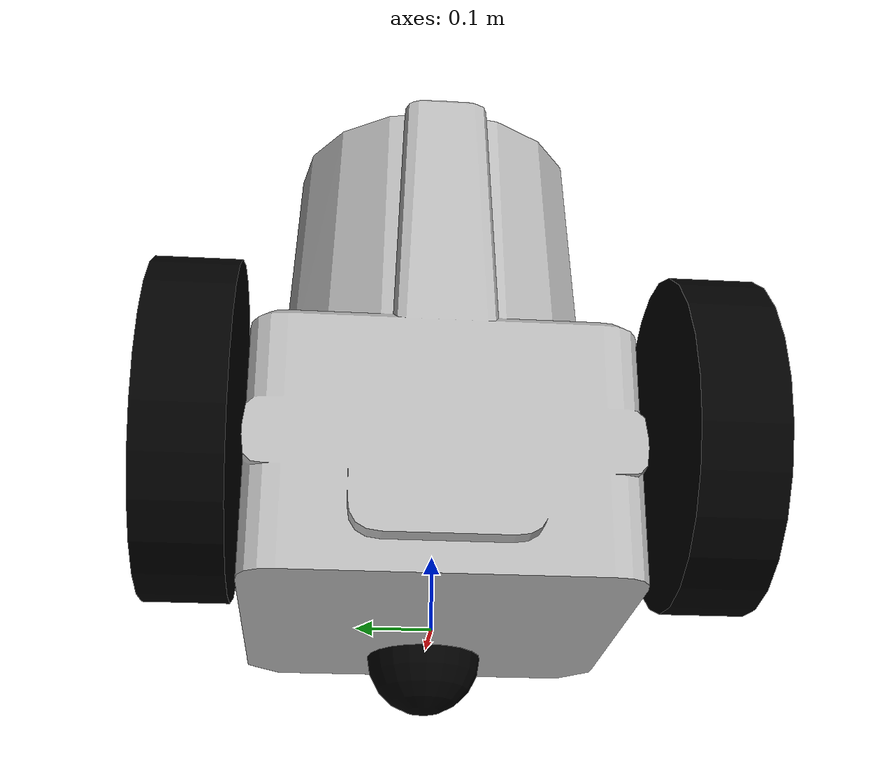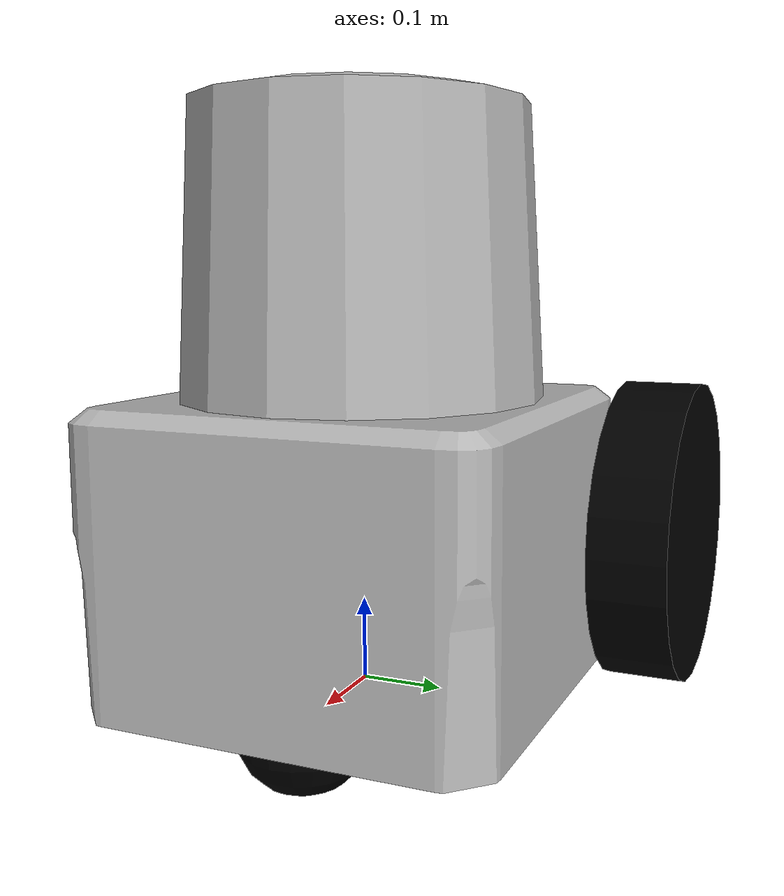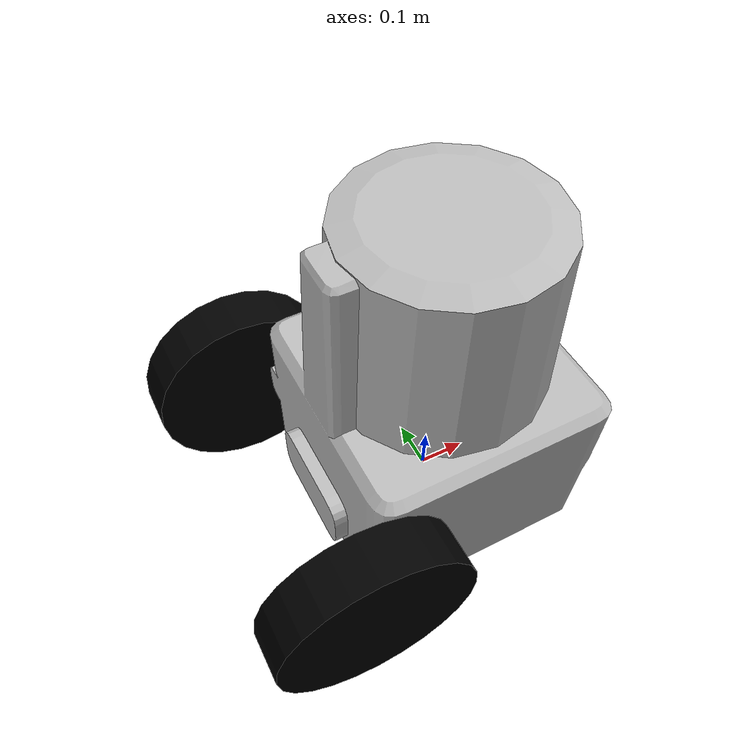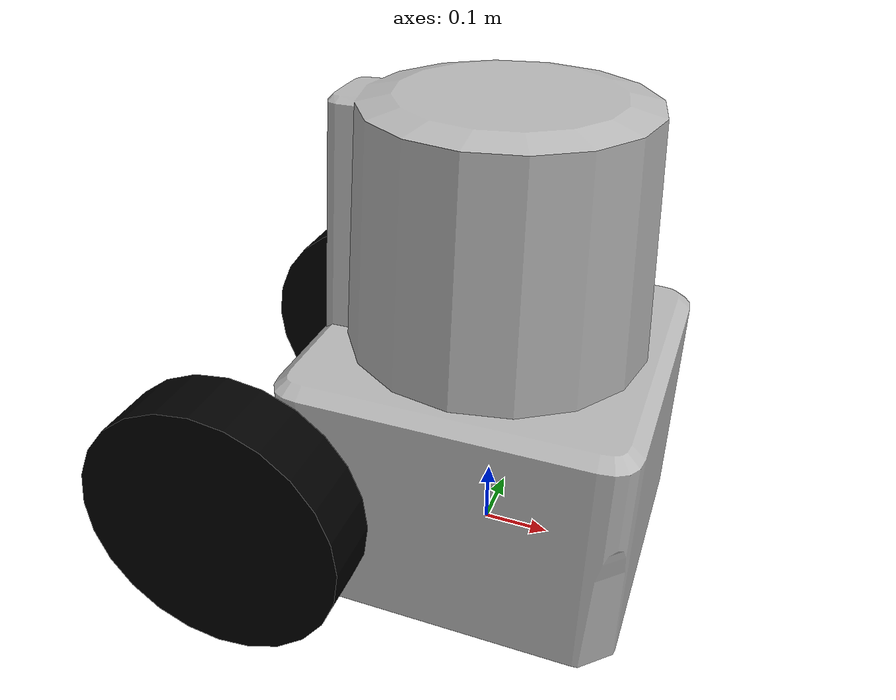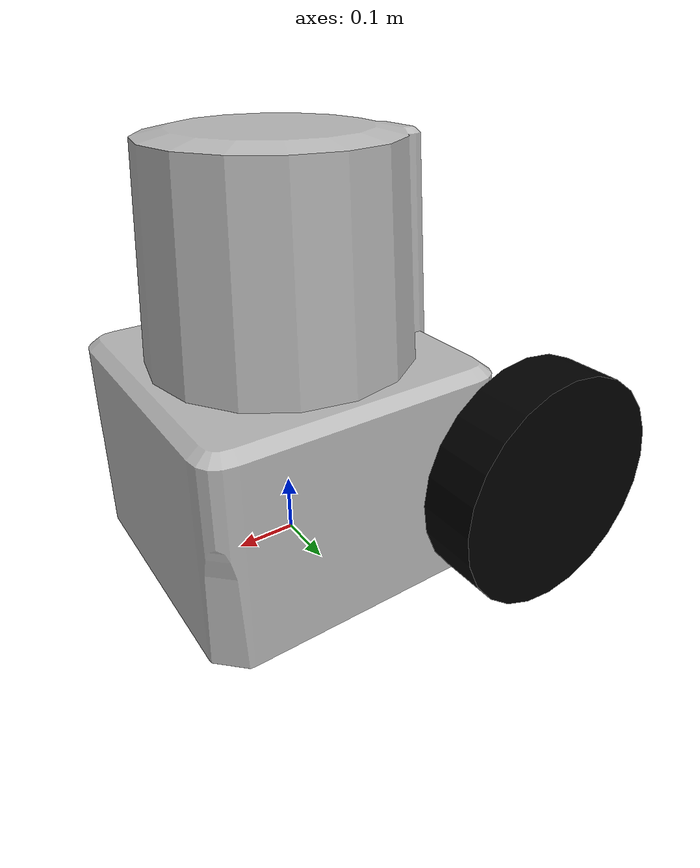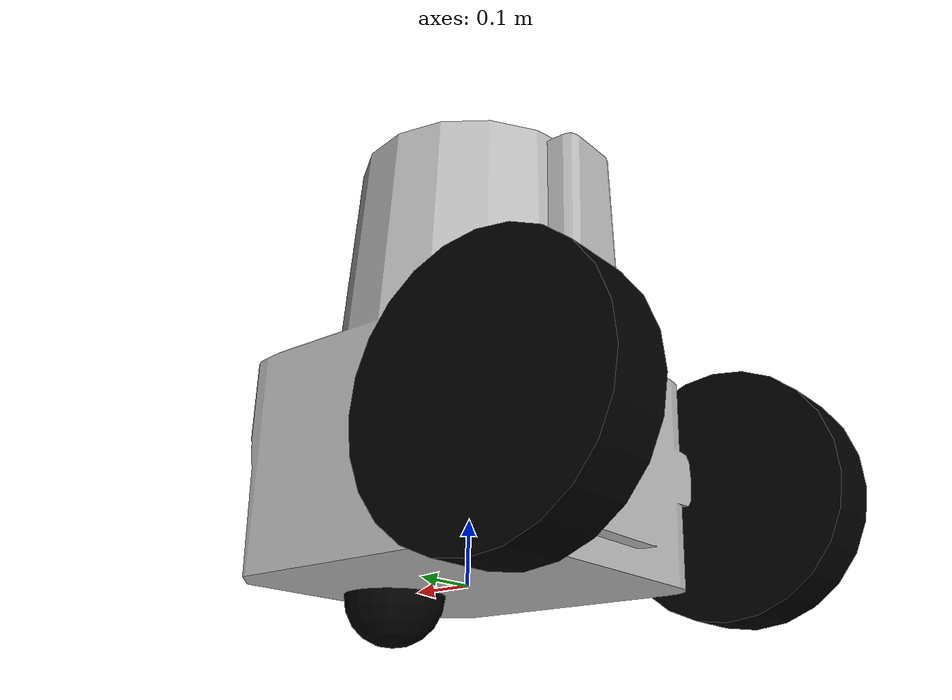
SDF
<?xml version="1.0" encoding="utf-8"?>
<sdf version='1.6'>
    <model name='ActiveSensor'>
        <link name='body'>
            <pose>0 0 0 0 0 0</pose>
            <inertial>
                <mass>1.14395</mass>
                <inertia>
                    <ixx>0.095329</ixx>
                    <ixy>0</ixy>
                    <ixz>0</ixz>
                    <iyy>0.381317</iyy>
                    <iyz>0</iyz>
                    <izz>0.476646</izz>
                </inertia>
            </inertial>
            <collision name='collision_base'>
                <pose>0 0 0.0175015175 0 0 0</pose>
                <geometry>
                    <box>
                        <size>0.05001062 0.05001062 0.035003035</size>
                        <scale>10 10 10</scale>
                    </box>
                </geometry>
            </collision>
            <collision name='collision_top'>
                <pose>0 0 0.0525045525 0 0 0</pose>
                <geometry>
                    <cylinder>
                        <radius>0.02</radius>
                        <length>0.035003035</length>
                    </cylinder>
                    <scale>10 10 10</scale>
                </geometry>
            </collision>
            <visual name='visual'>
                <pose>0 0 0 0 0 1.5707</pose>
                <geometry>
                    <mesh>
                        <uri>model://active_sensor/meshes/hokuyo_urg04lx.dae</uri>
                        <scale>10 10 10</scale>
                    </mesh>
                </geometry>
            </visual>
        </link>
        <link name='left_wheel'>
            <pose relative_to="body">-0.3 0.3 0.15 -1.5707 0 0</pose>
            <inertial>
                <mass>1</mass>
                <inertia>
                    <ixx>0.013333</ixx>
                    <ixy>0</ixy>
                    <ixz>0</ixz>
                    <iyy>0.013333</iyy>
                    <iyz>0</iyz>
                    <izz>0.02</izz>
                </inertia>
            </inertial>
            <visual name='visual'>
                <geometry>
                    <cylinder>
                        <radius>0.2</radius>
                        <length>0.1</length>
                    </cylinder>
                </geometry>
                <material>
                    <ambient>0.0 0.0 0.0 1</ambient>
                    <diffuse>0.0 0.0 0.0 1</diffuse>
                    <specular>0.0 0.0 0.0 1</specular>
                </material>
            </visual>
            <collision name='collision'>
                <geometry>
                    <cylinder>
                        <radius>0.2</radius>
                        <length>0.1</length>
                    </cylinder>
                </geometry>
            </collision>
        </link>
        <link name='right_wheel'>
            <pose relative_to="body">-0.3 -0.3 0.15 -1.5707 0 0</pose> <!--angles
            are in radian-->
            <inertial>
                <mass>1</mass>
                <inertia>
                    <ixx>0.013333</ixx>
                    <ixy>0</ixy>
                    <ixz>0</ixz>
                    <iyy>0.013333</iyy>
                    <iyz>0</iyz>
                    <izz>0.02</izz>
                </inertia>
            </inertial>
            <visual name='visual'>
                <geometry>
                    <cylinder>
                        <radius>0.2</radius>
                        <length>0.1</length>
                    </cylinder>
                </geometry>
                <material>
                    <ambient>0.0 0.0 0.0 1</ambient>
                    <diffuse>0.0 0.0 0.0 1</diffuse>
                    <specular>0.0 0.0 0.0 1</specular>
                </material>
            </visual>
            <collision name='collision'>
                <geometry>
                    <cylinder>
                        <radius>0.2</radius>
                        <length>0.1</length>
                    </cylinder>
                </geometry>
            </collision>
        </link>
        <frame name="caster_frame" attached_to='body'>
            <pose>0.15 0 0.0 0 0 0</pose>
        </frame>
        <link name='caster'>
            <pose relative_to='caster_frame' />
            <inertial>
                <mass>3</mass>
                <inertia>
                    <ixx>0.016</ixx>
                    <ixy>0</ixy>
                    <ixz>0</ixz>
                    <iyy>0.016</iyy>
                    <iyz>0</iyz>
                    <izz>0.016</izz>
                </inertia>
            </inertial>
            <visual name='visual'>
                <geometry>
                    <sphere>
                        <radius>0.08</radius>
                    </sphere>
                </geometry>
                <material>
                    <ambient>0.0 0.0 0.0 1</ambient>
                    <diffuse>0.0 0.0 0.0 1</diffuse>
                    <specular>0.0 0.0 0.0 1</specular>
                </material>
            </visual>
            <collision name='collision'>
                <geometry>
                    <sphere>
                        <radius>0.08</radius>
                    </sphere>
                </geometry>
            </collision>
        </link>
        <joint name='left_wheel_joint' type='revolute'>
            <pose relative_to='left_wheel' />
            <parent>body</parent>
            <child>left_wheel</child>
            <axis>
                <xyz expressed_in='__model__'>0 1 0</xyz> <!--can
                be defined as any frame or even arbitrary frames-->
                <limit>
                    <lower>-1.79769e+308</lower>    <!--negative
                    infinity-->
                    <upper>1.79769e+308</upper>     <!--positive
                    infinity-->
                </limit>
            </axis>
        </joint>
        <joint name='right_wheel_joint' type='revolute'>
            <pose relative_to='right_wheel' />
            <parent>body</parent>
            <child>right_wheel</child>
            <axis>
                <xyz expressed_in='__model__'>0 1 0</xyz>
                <limit>
                    <lower>-1.79769e+308</lower>    <!--negative
                    infinity-->
                    <upper>1.79769e+308</upper>     <!--positive
                    infinity-->
                </limit>
            </axis>
        </joint>
        <joint name='caster_wheel' type='ball'>
            <parent>body</parent>
            <child>caster</child>
        </joint>
        <plugin
            filename="libignition-gazebo-diff-drive-system.so"
            name="ignition::gazebo::systems::DiffDrive">
            <left_joint>left_wheel_joint</left_joint>
            <right_joint>right_wheel_joint</right_joint>
            <wheel_separation>2</wheel_separation>
            <wheel_radius>0.1</wheel_radius>
            <topic>ActiveSensor/cmd_vel</topic>
        </plugin>
        <plugin name='ignition::gazebo::systems::OdometryPublisher'
            filename='ignition-gazebo-odometry-publisher-system'>
            <odom_topic>/ActiveSensor/odometry</odom_topic>
            <dimensions>3</dimensions>
        </plugin>
    </model>
</sdf>
